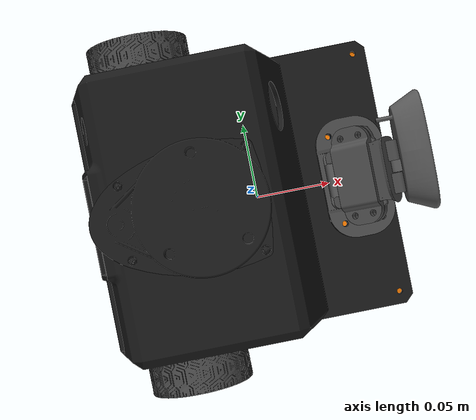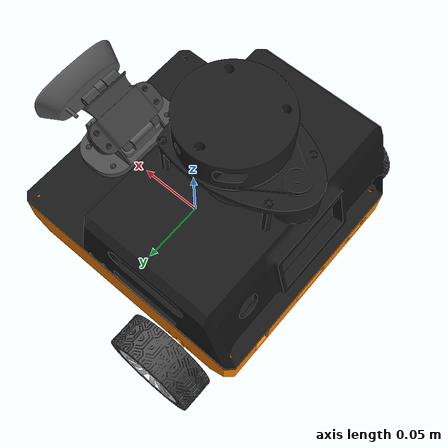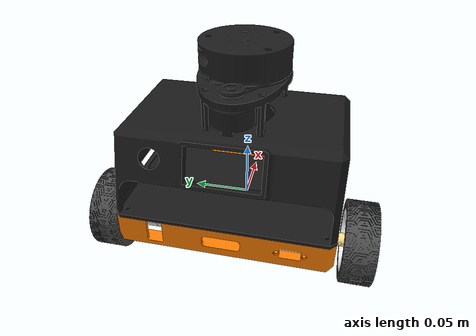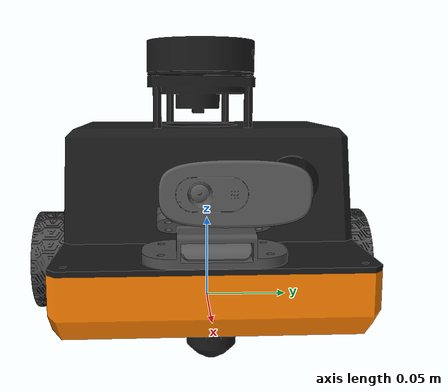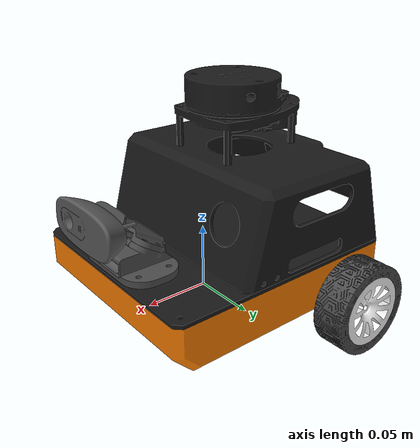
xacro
<?xml version="1.0"?>
<robot xmlns:xacro="http://www.ros.org/wiki/xacro"  name="rossy">

    <xacro:arg name="use_ros2_control" default="true"/>
    <xacro:arg name="sim_mode" default="false"/>

    <xacro:include filename="robot_core.urdf" />

    <xacro:if value="$(arg use_ros2_control)">
        <xacro:include filename="ros2_control.xacro" />
    </xacro:if>
    <xacro:unless value="$(arg use_ros2_control)">
        <xacro:include filename="gazebo_control.xacro" />
    </xacro:unless>

    <xacro:include filename="lidar.xacro" />

</robot>

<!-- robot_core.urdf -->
<!-- Generated using onshape-to-robot -->
<!-- Onshape https://cad.onshape.com/documents/653d84768203eef17fdafd62/w/ca2b8950acac85338a8e9098/e/fe580aaf98bff73fae543fc0 -->
<robot name="description">
  <!-- Link base_link -->
  <link name="base_link">
    <inertial>
      <origin xyz="0 0 0" rpy="0 0 0"/>
      <mass value="0.1"/>
      <inertia ixx="0.0001" ixy="0" ixz="0" iyy="0.0001" iyz="0" izz="0.0001"/>
    </inertial>
  </link>
  <!-- Link chassis -->
  <link name="chassis">
    <inertial>
      <origin xyz="-0.0162216 -0.000717355 0.0566354" rpy="0 0 0"/>
      <mass value="0.859503"/>
      <inertia ixx="0.00426152" ixy="-3.6973e-05" ixz="0.000157471" iyy="0.00488469" iyz="3.69074e-05" izz="0.00473196"/>
    </inertial>
    <!-- Part chassis -->
    <visual>
      <origin xyz="-0.0102058 0 0.003" rpy="3.14159 -0 1.5708"/>
      <geometry>
        <mesh filename="file://$(find rossy)/description/assets/chassis.stl"/>
      </geometry>
      <material name="chassis_material">
        <color rgba="1 0.501961 0 1"/>
      </material>
    </visual>
    <collision>
      <origin xyz="-0.0102058 0 0.053" rpy="3.14159 -0 1.5708"/>
      <geometry>
        <box size="0.170 0.190 0.106"/>
      </geometry>
    </collision>
    <!-- Part motor -->
    <visual>
      <origin xyz="0.567337 0.115606 0.182641" rpy="1.5708 0 -1.57083"/>
      <geometry>
        <mesh filename="file://$(find rossy)/description/assets/motor.stl"/>
      </geometry>
      <material name="motor_material">
        <color rgba="0.8 0.8 0.8 1"/>
      </material>
    </visual>

    <!-- Part shell -->
    <visual>
      <origin xyz="-0.037706 -0.0850001 0.041" rpy="0 0 1.5708"/>
      <geometry>
        <mesh filename="file://$(find rossy)/description/assets/shell.stl"/>
      </geometry>
      <material name="shell_material">
        <color rgba="0.0980392 0.0980392 0.0980392 1"/>
      </material>
    </visual>

    <!-- Part lidar -->
    <visual>
      <origin xyz="-0.0307058 -0.00250012 0.1371" rpy="1.5708 -0 -3.14159"/>
      <geometry>
        <mesh filename="file://$(find rossy)/description/assets/lidar.stl"/>
      </geometry>
      <material name="lidar_material">
        <color rgba="0.109804 0.109804 0.109804 1"/>
      </material>
    </visual>
    <collision>
      <origin xyz="-0.0307058 -0.00250012 0.1371" rpy="0 0 0"/>
      <geometry>
        <cylinder radius="0.045" length="0.055"/>
      </geometry>
    </collision>

    <!-- Part motor_2 -->
    <visual>
      <origin xyz="-0.687748 -0.115606 0.182641" rpy="1.5708 -0 1.57076"/>
      <geometry>
        <mesh filename="file://$(find rossy)/description/assets/motor.stl"/>
      </geometry>
      <material name="motor_2_material">
        <color rgba="0.8 0.8 0.8 1"/>
      </material>
    </visual>

    <!-- Part cover -->
    <visual>
      <origin xyz="-0.010206 -1.23456e-07 0.038" rpy="-0 -0 -1.5708"/>
      <geometry>
        <mesh filename="file://$(find rossy)/description/assets/cover.stl"/>
      </geometry>
      <material name="cover_material">
        <color rgba="0.0980392 0.0980392 0.0980392 1"/>
      </material>
    </visual>

    <!-- Part camera_mount_base -->
    <visual>
      <origin xyz="0.062794 -1.23456e-07 0.041" rpy="1.5708 0 -1.5708"/>
      <geometry>
        <mesh filename="file://$(find rossy)/description/assets/camera_mount_base.stl"/>
      </geometry>
      <material name="camera_mount_base_material">
        <color rgba="0.301961 0.301961 0.301961 1"/>
      </material>
    </visual>

    <!-- Part logitech_c270 -->
    <visual>
      <origin xyz="0.100572 0.0072075 0.0814124" rpy="1.53589 0 1.5708"/>
      <geometry>
        <mesh filename="file://$(find rossy)/description/assets/logitech_c270.stl"/>
      </geometry>
      <material name="logitech_c270_material">
        <color rgba="0.34902 0.34902 0.34902 1"/>
      </material>
    </visual>
    <collision>
      <origin xyz="0.100572 0.0072075 0.0814124" rpy="1.53589 0 1.5708"/>
      <geometry>
        <mesh filename="file://$(find rossy)/description/assets/logitech_c270.stl"/>
      </geometry>
    </collision>

    <!-- Part attachment -->
    <visual>
      <origin xyz="0.0627324 -1.23456e-07 0.062159" rpy="2.12071 -0 -1.5708"/>
      <geometry>
        <mesh filename="file://$(find rossy)/description/assets/attachment.stl"/>
      </geometry>
      <material name="attachment_material">
        <color rgba="0.301961 0.301961 0.301961 1"/>
      </material>
    </visual>

    <!-- Part logitech_c270c -->
    <visual>
      <origin xyz="0.064203 -1.23456e-07 0.04925" rpy="1.5708 -0 1.5708"/>
      <geometry>
        <mesh filename="file://$(find rossy)/description/assets/logitech_c270c.stl"/>
      </geometry>
      <material name="logitech_c270c_material">
        <color rgba="0.34902 0.34902 0.34902 1"/>
      </material>
    </visual>

    <!-- Part logitech_c270b -->
    <visual>
      <origin xyz="0.0806752 -0.000750123 0.0793169" rpy="2.1293 -0 -1.5708"/>
      <geometry>
        <mesh filename="file://$(find rossy)/description/assets/logitech_c270b.stl"/>
      </geometry>
      <material name="logitech_c270b_material">
        <color rgba="0.294118 0.294118 0.294118 1"/>
      </material>
    </visual>

  </link>
  <!-- Link wheel -->
  <link name="wheel">
    <inertial>
      <origin xyz="9.22e-09 -4.58e-10 0.0184924" rpy="0 0 0"/>
      <mass value="0.0545006"/>
      <inertia ixx="1.88142e-05" ixy="2.09e-10" ixz="6e-12" iyy="1.88079e-05" iyz="-2e-12" izz="3.08203e-05"/>
    </inertial>
    <!-- Part rim -->
    <visual>
      <origin xyz="-0 -0 0.00575" rpy="0 1.5708 0"/>
      <geometry>
        <mesh filename="file://$(find rossy)/description/assets/rim.stl"/>
      </geometry>
      <material name="rim_material">
        <color rgba="1 1 1 1"/>
      </material>
    </visual>

    <!-- Part tire -->
    <visual>
      <origin xyz="0 -0 0.01825" rpy="-0 1.5708 0"/>
      <geometry>
        <mesh filename="file://$(find rossy)/description/assets/tire.stl"/>
      </geometry>
      <material name="tire_material">
        <color rgba="0.301961 0.301961 0.301961 1"/>
      </material>
    </visual>
    <collision>
      <origin xyz="0 -0 0.01825" rpy="-0 0 0"/>
      <geometry>
        <sphere radius="0.034" />
      </geometry>
    </collision>
    <!-- Part hex_nut -->
    <visual>
      <origin xyz="0 -0 0.018" rpy="-1.5708 0 -0"/>
      <geometry>
        <mesh filename="file://$(find rossy)/description/assets/hex_nut.stl"/>
      </geometry>
      <material name="hex_nut_material">
        <color rgba="1 0.870588 0.529412 1"/>
      </material>
    </visual>

  </link>
  <!-- Joint from chassis to wheel -->
  <joint name="left_wheel" type="continuous">
    <origin xyz="-0.0602058 0.086 0.0085" rpy="-1.5708 -1.5708 0"/>
    <parent link="chassis"/>
    <child link="wheel"/>
    <axis xyz="0 0 1"/>
    <limit effort="0.05" velocity="10"/>
  </joint>
  <!-- Link wheel_2 -->
  <link name="wheel_2">
    <inertial>
      <origin xyz="9.22e-09 4.58e-10 -0.0184924" rpy="0 0 0"/>
      <mass value="0.0545006"/>
      <inertia ixx="1.88142e-05" ixy="-2.09e-10" ixz="-6e-12" iyy="1.88079e-05" iyz="-2e-12" izz="3.08203e-05"/>
    </inertial>
    <!-- Part rim_2 -->
    <visual>
      <origin xyz="0 -0 -0.00575" rpy="3.14159 -1.5708 0"/>
      <geometry>
        <mesh filename="file://$(find rossy)/description/assets/rim.stl"/>
      </geometry>
      <material name="rim_2_material">
        <color rgba="1 1 1 1"/>
      </material>
    </visual>

    <!-- Part tire_2 -->
    <visual>
      <origin xyz="0 -0 -0.01825" rpy="3.14159 -1.5708 0"/>
      <geometry>
        <mesh filename="file://$(find rossy)/description/assets/tire.stl"/>
      </geometry>
      <material name="tire_2_material">
        <color rgba="0.301961 0.301961 0.301961 1"/>
      </material>
    </visual>
    <collision>
      <origin xyz="0 -0 -0.01825" rpy="0 0 0"/>
      <geometry>
        <sphere radius="0.034" />
      </geometry>
    </collision>
    <!-- Part hex_nut_2 -->
    <visual>
      <origin xyz="0 -0 -0.018" rpy="1.5708 -0 -0"/>
      <geometry>
        <mesh filename="file://$(find rossy)/description/assets/hex_nut.stl"/>
      </geometry>
      <material name="hex_nut_2_material">
        <color rgba="1 0.870588 0.529412 1"/>
      </material>
    </visual>

  </link>
  <!-- Joint from chassis to wheel_2 -->
  <joint name="right_wheel" type="continuous">
    <origin xyz="-0.0602058 -0.086 0.0085" rpy="-1.5708 -1.5708 0"/>
    <parent link="chassis"/>
    <child link="wheel_2"/>
    <axis xyz="0 0 1"/>
    <limit effort="0.05" velocity="10"/>
  </joint>
  <!-- Joint from base_link to chassis -->
  <joint name="base_link_to_chassis" type="fixed">
    <origin xyz="0 0 0" rpy="0 -0 0"/>
    <parent link="base_link"/>
    <child link="chassis"/>
  </joint>

  <!-- BASE_FOOTPRINT LINK -->
  <joint name="base_footprint_joint" type="fixed">
    <parent link="base_link"/>
    <child link="base_footprint"/>
    <origin xyz="0 0 0" rpy="0 0 0"/>
  </joint>

  <link name="base_footprint">
  </link>

  <!-- Part caster_wheel -->
  <link name="caster_wheel">
    <visual>
      <origin xyz="0 0 -0.005" rpy="1.5708 -0 1.5708"/>
      <geometry>
        <mesh filename="file://$(find rossy)/description/assets/caster_wheel.stl"/>
      </geometry>
      <material name="caster_wheel_material">
        <color rgba="0.0980392 0.0980392 0.0980392 1"/>
      </material>
    </visual>
    <collision>
      <origin xyz="0 0 -0.01275" rpy="0 0 0"/>
      <geometry>
        <cylinder radius="0.014" length="0.02550"/>
      </geometry>
    </collision>
  </link>

  <joint name="caster_wheel_joint" type="fixed">
    <parent link="chassis"/>
    <child link="caster_wheel"/>
    <origin xyz="0.0397942 0 0" rpy="0.0 0.0 0.0"/>
  </joint>

  <gazebo reference="caster_wheel">
    <mu1 value="0.001"/>
    <mu2 value="0.001"/>
  </gazebo>

  <gazebo reference="wheel">
    <mu1 value="1.0"/>
    <mu2 value="1.0"/>
  </gazebo>

  <gazebo reference="wheel_2">
    <mu1 value="1.0"/>
    <mu2 value="1.0"/>
  </gazebo>
</robot>

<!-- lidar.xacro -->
<robot xmlns:xacro="http://www.ros.org/wiki/xacro" >

    <joint name="laser_joint" type="fixed">
        <parent link="chassis"/>
        <child link="laser_frame"/>
        <origin xyz="-0.0307058 -0.00250012 0.1371" rpy="0 0 3.14159"/>
    </joint>

    <link name="laser_frame">
    </link>

    <gazebo>
        <plugin
            filename="gz-sim-sensors-system"
            name="gz::sim::systems::Sensors">
            <render_engine>ogre2</render_engine>
        </plugin>
    </gazebo>

    <gazebo reference="laser_frame">
        <sensor name="laser" type="gpu_lidar">
            <frame_id>laser_frame</frame_id>
            <gz_frame_id>laser_frame</gz_frame_id>

            <visualize>true</visualize>
            <always_on>true</always_on>
            <update_rate>20</update_rate>
            <topic>scan</topic>
            <ray>
                <scan>
                    <horizontal>
                        <samples>360</samples>
                        <min_angle>-3.14</min_angle>
                        <max_angle>3.14</max_angle>
                    </horizontal>
                </scan>
                <range>
                    <min>0.15</min>
                    <max>12</max>
                </range>
            </ray>
        </sensor>
    </gazebo>

</robot>
